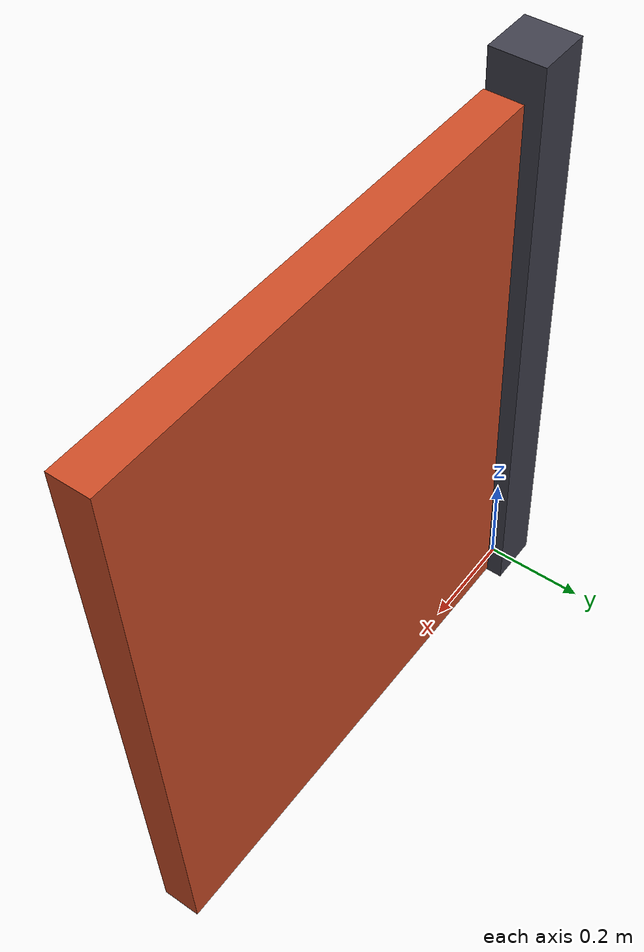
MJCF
<mujoco model="genesis_hinged_door">
  <compiler angle="degree" autolimits="true"/>

  <option gravity="0 0 -9.81"/>

  <worldbody>
    <!-- 没有 joint 的根 body 固定在世界坐标系中 -->
    <body name="door_frame">
      <geom
        name="frame_post"
        type="box"
        pos="0 0 0.60"
        size="0.05 0.05 0.60"
        rgba="0.25 0.25 0.30 1"
      />

      <!-- child body 通过一个 revolute/hinge joint 连接 -->
      <body name="door" pos="0.08 0 0.60">
        <joint
          name="door_hinge"
          type="hinge"
          axis="0 0 1"
          limited="true"
          range="-100 100"
          damping="1.0"
          armature="0.02"
        />

        <geom
          name="door_panel"
          type="box"
          pos="0.45 0 0"
          size="0.45 0.035 0.55"
          density="500"
          rgba="0.80 0.30 0.15 1"
        />
      </body>
    </body>
  </worldbody>
</mujoco>
